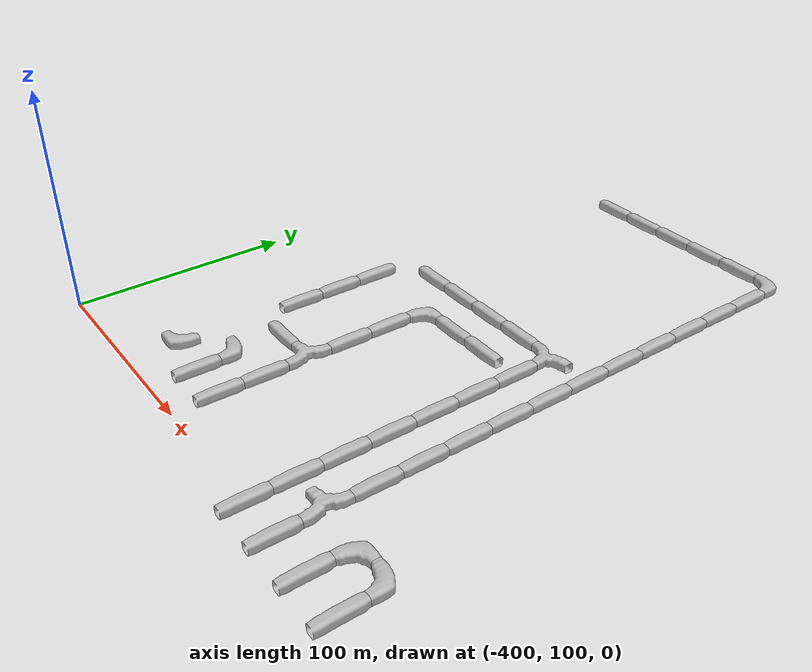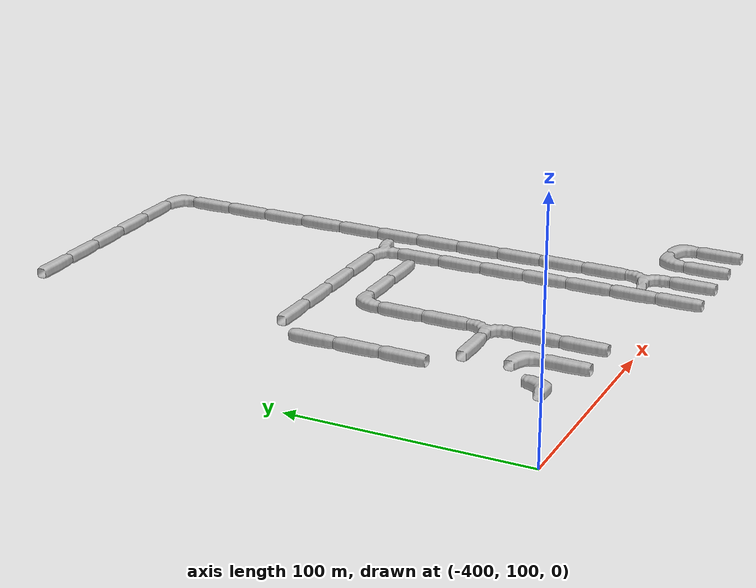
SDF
<sdf version="1.6">
 <world name="cave_8000">
  <include>
   <static>true</static>
   <name>cave_-10_5</name>
   <pose>-200 100 0 0 0 0.0</pose>
   <uri>model://cave_straight_20m</uri>
  </include>
  <include>
   <static>true</static>
   <name>cave_-10_6</name>
   <pose>-200 120 0 0 0 -1.5707963267948966</pose>
   <uri>model://cave_L_20m</uri>
  </include>
  <include>
   <static>true</static>
   <name>cave_-9_6</name>
   <pose>-180 120 0 0 0 3.141592653589793</pose>
   <uri>model://cave_L_20m</uri>
  </include>
  <include>
   <static>true</static>
   <name>cave_-9_5</name>
   <pose>-180 100 0 0 0 0.0</pose>
   <uri>model://cave_straight_20m</uri>
  </include>
  <include>
   <static>true</static>
   <name>cave_-11_5</name>
   <pose>-220 100 0 0 0 0.0</pose>
   <uri>model://cave_straight_20m</uri>
  </include>
  <include>
   <static>true</static>
   <name>cave_-11_6</name>
   <pose>-220 120 0 0 0 1.5707963267948966</pose>
   <uri>model://cave_3way_20m</uri>
  </include>
  <include>
   <static>true</static>
   <name>cave_-11_7</name>
   <pose>-220 140 0 0 0 0.0</pose>
   <uri>model://cave_straight_20m</uri>
  </include>
  <include>
   <static>true</static>
   <name>cave_-11_8</name>
   <pose>-220 160 0 0 0 0.0</pose>
   <uri>model://cave_straight_20m</uri>
  </include>
  <include>
   <static>true</static>
   <name>cave_-11_9</name>
   <pose>-220 180 0 0 0 0.0</pose>
   <uri>model://cave_straight_20m</uri>
  </include>
  <include>
   <static>true</static>
   <name>cave_-11_10</name>
   <pose>-220 200 0 0 0 0.0</pose>
   <uri>model://cave_straight_20m</uri>
  </include>
  <include>
   <static>true</static>
   <name>cave_-11_11</name>
   <pose>-220 220 0 0 0 0.0</pose>
   <uri>model://cave_straight_20m</uri>
  </include>
  <include>
   <static>true</static>
   <name>cave_-11_12</name>
   <pose>-220 240 0 0 0 0.0</pose>
   <uri>model://cave_straight_20m</uri>
  </include>
  <include>
   <static>true</static>
   <name>cave_-11_13</name>
   <pose>-220 260 0 0 0 0.0</pose>
   <uri>model://cave_straight_20m</uri>
  </include>
  <include>
   <static>true</static>
   <name>cave_-11_14</name>
   <pose>-220 280 0 0 0 0.0</pose>
   <uri>model://cave_straight_20m</uri>
  </include>
  <include>
   <static>true</static>
   <name>cave_-11_15</name>
   <pose>-220 300 0 0 0 0.0</pose>
   <uri>model://cave_straight_20m</uri>
  </include>
  <include>
   <static>true</static>
   <name>cave_-11_16</name>
   <pose>-220 320 0 0 0 0.0</pose>
   <uri>model://cave_straight_20m</uri>
  </include>
  <include>
   <static>true</static>
   <name>cave_-11_17</name>
   <pose>-220 340 0 0 0 0.0</pose>
   <uri>model://cave_straight_20m</uri>
  </include>
  <include>
   <static>true</static>
   <name>cave_-11_18</name>
   <pose>-220 360 0 0 0 3.141592653589793</pose>
   <uri>model://cave_L_20m</uri>
  </include>
  <include>
   <static>true</static>
   <name>cave_-12_18</name>
   <pose>-240 360 0 0 0 1.5707963267948966</pose>
   <uri>model://cave_straight_20m</uri>
  </include>
  <include>
   <static>true</static>
   <name>cave_-13_18</name>
   <pose>-260 360 0 0 0 1.5707963267948966</pose>
   <uri>model://cave_straight_20m</uri>
  </include>
  <include>
   <static>true</static>
   <name>cave_-14_18</name>
   <pose>-280 360 0 0 0 1.5707963267948966</pose>
   <uri>model://cave_straight_20m</uri>
  </include>
  <include>
   <static>true</static>
   <name>cave_-15_18</name>
   <pose>-300 360 0 0 0 1.5707963267948966</pose>
   <uri>model://cave_straight_20m</uri>
  </include>
  <include>
   <static>true</static>
   <name>cave_-16_18</name>
   <pose>-320 360 0 0 0 1.5707963267948966</pose>
   <uri>model://cave_straight_20m</uri>
  </include>
  <include>
   <static>true</static>
   <name>cave_-12_5</name>
   <pose>-240 100 0 0 0 0.0</pose>
   <uri>model://cave_straight_20m</uri>
  </include>
  <include>
   <static>true</static>
   <name>cave_-12_6</name>
   <pose>-240 120 0 0 0 0.0</pose>
   <uri>model://cave_straight_20m</uri>
  </include>
  <include>
   <static>true</static>
   <name>cave_-12_7</name>
   <pose>-240 140 0 0 0 0.0</pose>
   <uri>model://cave_straight_20m</uri>
  </include>
  <include>
   <static>true</static>
   <name>cave_-12_8</name>
   <pose>-240 160 0 0 0 0.0</pose>
   <uri>model://cave_straight_20m</uri>
  </include>
  <include>
   <static>true</static>
   <name>cave_-12_9</name>
   <pose>-240 180 0 0 0 0.0</pose>
   <uri>model://cave_straight_20m</uri>
  </include>
  <include>
   <static>true</static>
   <name>cave_-12_10</name>
   <pose>-240 200 0 0 0 0.0</pose>
   <uri>model://cave_straight_20m</uri>
  </include>
  <include>
   <static>true</static>
   <name>cave_-12_11</name>
   <pose>-240 220 0 0 0 0.0</pose>
   <uri>model://cave_straight_20m</uri>
  </include>
  <include>
   <static>true</static>
   <name>cave_-12_12</name>
   <pose>-240 240 0 0 0 3.141592653589793</pose>
   <uri>model://cave_3way_20m</uri>
  </include>
  <include>
   <static>true</static>
   <name>cave_-13_12</name>
   <pose>-260 240 0 0 0 1.5707963267948966</pose>
   <uri>model://cave_straight_20m</uri>
  </include>
  <include>
   <static>true</static>
   <name>cave_-14_12</name>
   <pose>-280 240 0 0 0 1.5707963267948966</pose>
   <uri>model://cave_straight_20m</uri>
  </include>
  <include>
   <static>true</static>
   <name>cave_-15_12</name>
   <pose>-300 240 0 0 0 1.5707963267948966</pose>
   <uri>model://cave_straight_20m</uri>
  </include>
  <include>
   <static>true</static>
   <name>cave_-16_12</name>
   <pose>-320 240 0 0 0 1.5707963267948966</pose>
   <uri>model://cave_straight_20m</uri>
  </include>
  <include>
   <static>true</static>
   <name>cave_-16_8</name>
   <pose>-320 160 0 0 0 1.5707963267948966</pose>
   <uri>model://cave_straight_20m</uri>
  </include>
  <include>
   <static>true</static>
   <name>cave_-15_8</name>
   <pose>-300 160 0 0 0 1.5707963267948966</pose>
   <uri>model://cave_3way_20m</uri>
  </include>
  <include>
   <static>true</static>
   <name>cave_-15_7</name>
   <pose>-300 140 0 0 0 0.0</pose>
   <uri>model://cave_straight_20m</uri>
  </include>
  <include>
   <static>true</static>
   <name>cave_-15_6</name>
   <pose>-300 120 0 0 0 0.0</pose>
   <uri>model://cave_straight_20m</uri>
  </include>
  <include>
   <static>true</static>
   <name>cave_-16_6</name>
   <pose>-320 120 0 0 0 0.0</pose>
   <uri>model://cave_straight_20m</uri>
  </include>
  <include>
   <static>true</static>
   <name>cave_-16_7</name>
   <pose>-320 140 0 0 0 3.141592653589793</pose>
   <uri>model://cave_L_20m</uri>
  </include>
  <include>
   <static>true</static>
   <name>cave_-17_6</name>
   <pose>-340 120 0 0 0 1.5707963267948966</pose>
   <uri>model://cave_L_20m</uri>
  </include>
  <include>
   <static>true</static>
   <name>cave_-15_9</name>
   <pose>-300 180 0 0 0 0.0</pose>
   <uri>model://cave_straight_20m</uri>
  </include>
  <include>
   <static>true</static>
   <name>cave_-15_10</name>
   <pose>-300 200 0 0 0 0.0</pose>
   <uri>model://cave_straight_20m</uri>
  </include>
  <include>
   <static>true</static>
   <name>cave_-15_11</name>
   <pose>-300 220 0 0 0 -1.5707963267948966</pose>
   <uri>model://cave_L_20m</uri>
  </include>
  <include>
   <static>true</static>
   <name>cave_-14_11</name>
   <pose>-280 220 0 0 0 1.5707963267948966</pose>
   <uri>model://cave_straight_20m</uri>
  </include>
  <include>
   <static>true</static>
   <name>cave_-13_11</name>
   <pose>-260 220 0 0 0 1.5707963267948966</pose>
   <uri>model://cave_straight_20m</uri>
  </include>
  <include>
   <static>true</static>
   <name>cave_-17_9</name>
   <pose>-340 180 0 0 0 0.0</pose>
   <uri>model://cave_straight_20m</uri>
  </include>
  <include>
   <static>true</static>
   <name>cave_-17_10</name>
   <pose>-340 200 0 0 0 0.0</pose>
   <uri>model://cave_straight_20m</uri>
  </include>
  <include>
   <static>true</static>
   <name>cave_-17_11</name>
   <pose>-340 220 0 0 0 0.0</pose>
   <uri>model://cave_straight_20m</uri>
  </include>
 </world>
</sdf>
